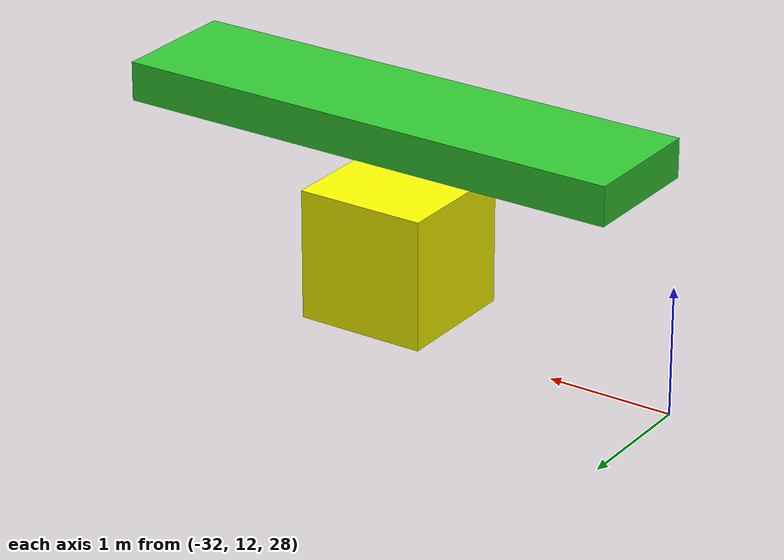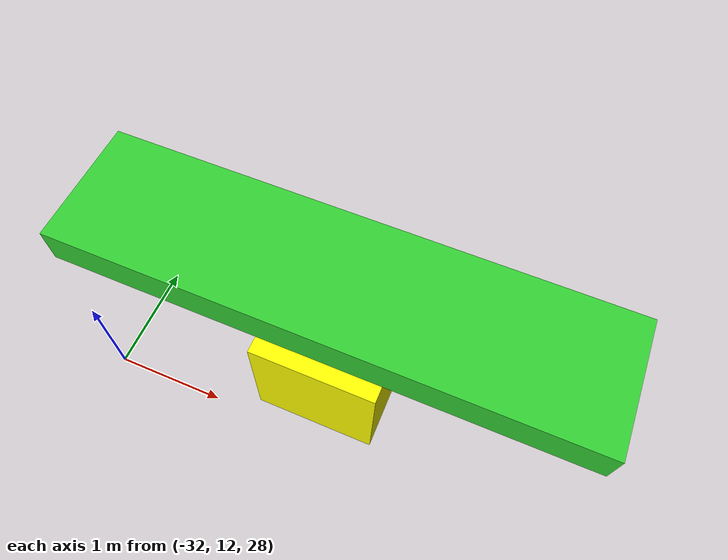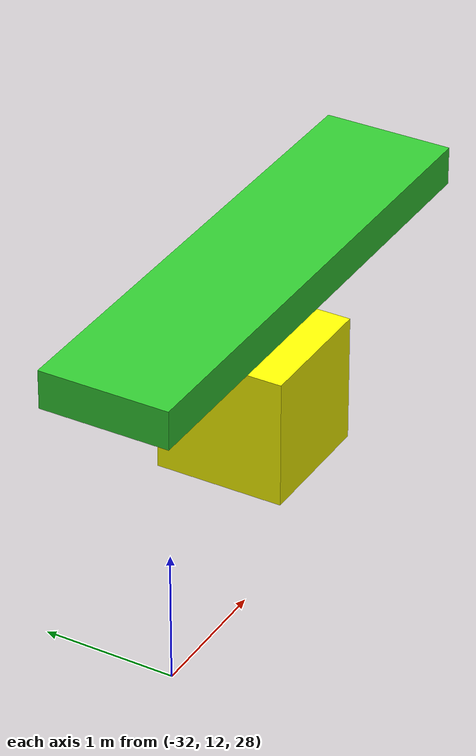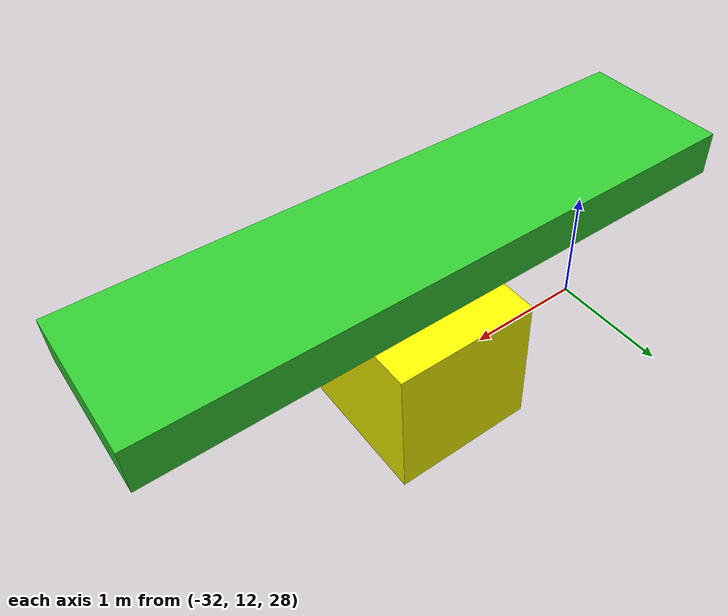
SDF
<?xml version="1.0"?>
<sdf version="1.9">
  <world name="payload_drop">

    <gravity>0 0 -9.81</gravity>

    <!-- Constant wind (m/s) in world frame: +Y crosswind -->
    <wind>
      <linear_velocity>0 6 0</linear_velocity>
    </wind>

    <!-- Core systems -->
    <plugin filename="gz-sim-physics-system" name="gz::sim::systems::Physics"/>
    <plugin filename="gz-sim-user-commands-system" name="gz::sim::systems::UserCommands"/>
    <plugin filename="gz-sim-scene-broadcaster-system" name="gz::sim::systems::SceneBroadcaster"/>

    <!-- Applies wind forces (uniform world wind) -->
    <plugin filename="gz-sim-wind-effects-system" name="gz::sim::systems::WindEffects"/>

    <!-- Light so you can see -->
    <light name="sun" type="directional">
      <pose>0 0 100 0 0 0</pose>
      <diffuse>1 1 1 1</diffuse>
      <specular>0.1 0.1 0.1 1</specular>
      <direction>-0.3 0.2 -1</direction>
    </light>

    <!-- Ground -->
    <model name="ground_plane">
      <static>true</static>
      <link name="link">
        <collision name="collision">
          <geometry><plane><normal>0 0 1</normal><size>2000 2000</size></plane></geometry>
        </collision>
        <visual name="visual">
          <geometry><plane><normal>0 0 1</normal><size>2000 2000</size></plane></geometry>
        </visual>
      </link>
    </model>

    <!-- Carrier: just a moving "aircraft stand-in" -->
    <model name="carrier">
      <!-- Start near origin so it's easy to see -->
      <pose>-30 12.5 30 0 0 0</pose>

      <link name="carrier_link">
        <gravity>false</gravity>
        <inertial>
          <mass>50</mass>
          <inertia>
            <ixx>10</ixx><iyy>10</iyy><izz>10</izz>
            <ixy>0</ixy><ixz>0</ixz><iyz>0</iyz>
          </inertia>
        </inertial>
        <collision name="collision"><geometry><box><size>4 1 0.3</size></box></geometry></collision>
        <visual name="visual">
          <geometry><box><size>4 1 0.3</size></box></geometry>
          <material><ambient>0.1 0.4 0.1 1</ambient><diffuse>0.2 0.8 0.2 1</diffuse></material>
        </visual>
      </link>

      <!-- Carrier velocity (m/s): +X forward -->
      <plugin filename="gz-sim-velocity-control-system" name="gz::sim::systems::VelocityControl">
        <initial_linear>25 0 0</initial_linear>
        <initial_angular>0 0 0</initial_angular>
      </plugin>

      <!-- Detach payload by publishing Empty to /payload/detach -->
      <plugin filename="gz-sim-detachable-joint-system" name="gz::sim::systems::DetachableJoint">
        <parent_link>carrier_link</parent_link>
        <child_model>payload</child_model>
        <child_link>payload_link</child_link>
        <detach_topic>/payload/detach</detach_topic>
      </plugin>
    </model>

    <!-- Payload: big + bright -->
    <model name="payload">
      <pose>-30 12.5 29.0 0 0 0</pose>

      <link name="payload_link">
        <inertial>
          <mass>2.0</mass>
          <inertia>
            <ixx>0.2</ixx><iyy>0.2</iyy><izz>0.2</izz>
            <ixy>0</ixy><ixz>0</ixz><iyz>0</iyz>
          </inertia>
        </inertial>

        <!-- 1m cube -->
        <collision name="collision"><geometry><box><size>1 1 1</size></box></geometry></collision>
        <visual name="visual">
          <geometry><box><size>1 1 1</size></box></geometry>
          <material><ambient>1 1 0 1</ambient><diffuse>1 1 0 1</diffuse></material>
        </visual>
      </link>

      <!-- Publish model pose -->
      <plugin filename="gz-sim-pose-publisher-system" name="gz::sim::systems::PosePublisher">
        <publish_model_pose>true</publish_model_pose>
        <update_frequency>30</update_frequency>
      </plugin>
    </model>

  </world>
</sdf>
